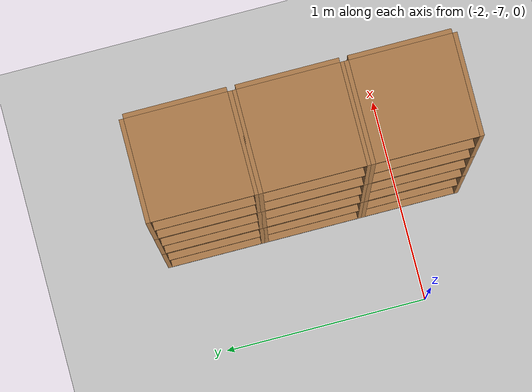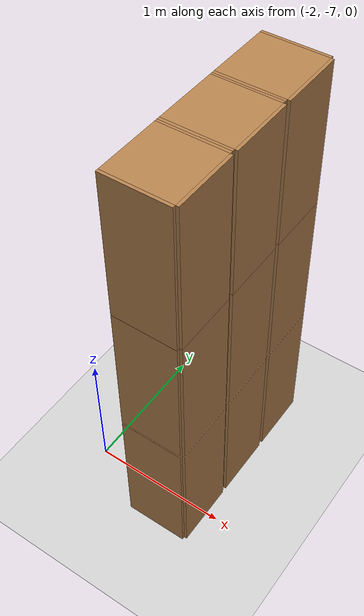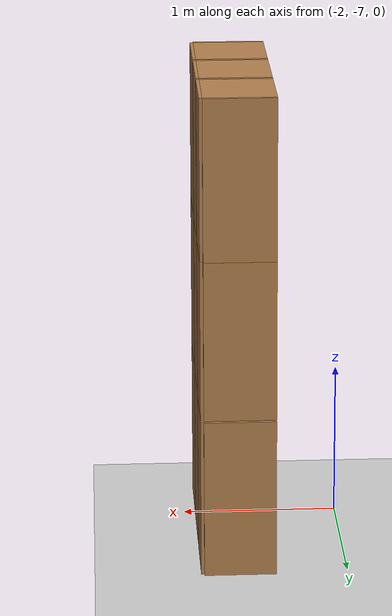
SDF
<sdf version="1.6">
 <world name="default">
  <model name="ground_plane">
   <static>1</static>
   <link name="link">
    <collision name="collision">
     <geometry><plane><normal>0 0 1</normal><size>100 100</size></plane></geometry>
     <surface>
      <contact><collide_bitmask>65535</collide_bitmask></contact>
      <friction><ode><mu>100</mu><mu2>50</mu2></ode></friction>
     </surface>
    </collision>
    <visual name="visual">
     <cast_shadows>0</cast_shadows>
     <geometry><plane><normal>0 0 1</normal><size>100 100</size></plane></geometry>
     <material>
      <script><uri>file://media/materials/scripts/gazebo.material</uri><name>Gazebo/Grey</name></script>
     </material>
    </visual>
   </link>
  </model>
  <model name="Locker18_clone_4_clone_2_clone_2_clone_2_clone_clone_1">
   <model name="Locker18">
    <model name="Locker3">
     <model name="cabinet">
      <static>1</static>
      <link name="cabinet_bottom_plate">
       <inertial>
        <pose>0 0 -1 0 -0 0</pose>
        <inertia><ixx>2.05</ixx><ixy>0</ixy><ixz>0</ixz><iyy>2.05</iyy><iyz>0</iyz><izz>2.05</izz></inertia>
        <mass>25</mass>
       </inertial>
       <collision name="cabinet_bottom_plate_geom">
        <pose>0 0 0.01 0 -0 0</pose>
        <geometry><box><size>0.45 0.45 0.02</size></box></geometry>
       </collision>
       <visual name="cabinet_bottom_plate_geom_visual">
        <pose>0 0 0.01 0 -0 0</pose>
        <geometry><box><size>0.45 0.45 0.02</size></box></geometry>
        <material>
         <script><uri>file://media/materials/scripts/gazebo.material</uri><name>Gazebo/Wood</name></script>
        </material>
       </visual>
       <collision name="cabinet_bottom_plate_geom_cabinet_back_plate">
        <pose>0.235 0 0.51 0 -0 0</pose>
        <geometry><box><size>0.02 0.45 1.02</size></box></geometry>
       </collision>
       <visual name="cabinet_bottom_plate_geom_cabinet_back_plate_visual">
        <pose>0.235 0 0.51 0 -0 0</pose>
        <geometry><box><size>0.02 0.45 1.02</size></box></geometry>
        <material>
         <script><uri>file://media/materials/scripts/gazebo.material</uri><name>Gazebo/Wood</name></script>
        </material>
       </visual>
       <collision name="cabinet_bottom_plate_geom_cabinet_left_plate">
        <pose>0 0.235 0.51 0 -0 0</pose>
        <geometry><box><size>0.45 0.02 1.02</size></box></geometry>
       </collision>
       <visual name="cabinet_bottom_plate_geom_cabinet_left_plate_visual">
        <pose>0 0.235 0.51 0 -0 0</pose>
        <geometry><box><size>0.45 0.02 1.02</size></box></geometry>
        <material>
         <script><uri>file://media/materials/scripts/gazebo.material</uri><name>Gazebo/Wood</name></script>
        </material>
       </visual>
       <collision name="cabinet_bottom_plate_geom_cabinet_middle_plate">
        <pose>0 0 0.51 0 -0 0</pose>
        <geometry><box><size>0.45 0.45 0.02</size></box></geometry>
       </collision>
       <visual name="cabinet_bottom_plate_geom_cabinet_middle_plate_visual">
        <pose>0 0 0.51 0 -0 0</pose>
        <geometry><box><size>0.45 0.45 0.02</size></box></geometry>
        <material>
         <script><uri>file://media/materials/scripts/gazebo.material</uri><name>Gazebo/Wood</name></script>
        </material>
       </visual>
       <collision name="cabinet_bottom_plate_geom_cabinet_right_plate">
        <pose>0 -0.235 0.51 0 -0 0</pose>
        <geometry><box><size>0.45 0.02 1.02</size></box></geometry>
       </collision>
       <visual name="cabinet_bottom_plate_geom_cabinet_right_plate_visual">
        <pose>0 -0.235 0.51 0 -0 0</pose>
        <geometry><box><size>0.45 0.02 1.02</size></box></geometry>
        <material>
         <script><uri>file://media/materials/scripts/gazebo.material</uri><name>Gazebo/Wood</name></script>
        </material>
       </visual>
       <collision name="cabinet_bottom_plate_geom_cabinet_top_plate">
        <pose>0 0 1.01 0 -0 0</pose>
        <geometry><box><size>0.45 0.45 0.02</size></box></geometry>
       </collision>
       <visual name="cabinet_bottom_plate_geom_cabinet_top_plate_visual">
        <pose>0 0 1.01 0 -0 0</pose>
        <geometry><box><size>0.45 0.45 0.02</size></box></geometry>
        <material>
         <script><uri>file://media/materials/scripts/gazebo.material</uri><name>Gazebo/Wood</name></script>
        </material>
       </visual>
      </link>
      <pose>-0.676968 1.45758 0 0 -0 0</pose>
     </model>
     <model name="cabinet_clone">
      <static>1</static>
      <link name="cabinet_bottom_plate">
       <inertial>
        <pose>0 0 -1 0 -0 0</pose>
        <inertia><ixx>2.05</ixx><ixy>0</ixy><ixz>0</ixz><iyy>2.05</iyy><iyz>0</iyz><izz>2.05</izz></inertia>
        <mass>25</mass>
       </inertial>
       <collision name="cabinet_bottom_plate_geom">
        <pose>0 0 0.01 0 -0 0</pose>
        <geometry><box><size>0.45 0.45 0.02</size></box></geometry>
       </collision>
       <visual name="cabinet_bottom_plate_geom_visual">
        <pose>0 0 0.01 0 -0 0</pose>
        <geometry><box><size>0.45 0.45 0.02</size></box></geometry>
        <material>
         <script><uri>file://media/materials/scripts/gazebo.material</uri><name>Gazebo/Wood</name></script>
        </material>
       </visual>
       <collision name="cabinet_bottom_plate_geom_cabinet_back_plate">
        <pose>0.235 0 0.51 0 -0 0</pose>
        <geometry><box><size>0.02 0.45 1.02</size></box></geometry>
       </collision>
       <visual name="cabinet_bottom_plate_geom_cabinet_back_plate_visual">
        <pose>0.235 0 0.51 0 -0 0</pose>
        <geometry><box><size>0.02 0.45 1.02</size></box></geometry>
        <material>
         <script><uri>file://media/materials/scripts/gazebo.material</uri><name>Gazebo/Wood</name></script>
        </material>
       </visual>
       <collision name="cabinet_bottom_plate_geom_cabinet_left_plate">
        <pose>0 0.235 0.51 0 -0 0</pose>
        <geometry><box><size>0.45 0.02 1.02</size></box></geometry>
       </collision>
       <visual name="cabinet_bottom_plate_geom_cabinet_left_plate_visual">
        <pose>0 0.235 0.51 0 -0 0</pose>
        <geometry><box><size>0.45 0.02 1.02</size></box></geometry>
        <material>
         <script><uri>file://media/materials/scripts/gazebo.material</uri><name>Gazebo/Wood</name></script>
        </material>
       </visual>
       <collision name="cabinet_bottom_plate_geom_cabinet_middle_plate">
        <pose>0 0 0.51 0 -0 0</pose>
        <geometry><box><size>0.45 0.45 0.02</size></box></geometry>
       </collision>
       <visual name="cabinet_bottom_plate_geom_cabinet_middle_plate_visual">
        <pose>0 0 0.51 0 -0 0</pose>
        <geometry><box><size>0.45 0.45 0.02</size></box></geometry>
        <material>
         <script><uri>file://media/materials/scripts/gazebo.material</uri><name>Gazebo/Wood</name></script>
        </material>
       </visual>
       <collision name="cabinet_bottom_plate_geom_cabinet_right_plate">
        <pose>0 -0.235 0.51 0 -0 0</pose>
        <geometry><box><size>0.45 0.02 1.02</size></box></geometry>
       </collision>
       <visual name="cabinet_bottom_plate_geom_cabinet_right_plate_visual">
        <pose>0 -0.235 0.51 0 -0 0</pose>
        <geometry><box><size>0.45 0.02 1.02</size></box></geometry>
        <material>
         <script><uri>file://media/materials/scripts/gazebo.material</uri><name>Gazebo/Wood</name></script>
        </material>
       </visual>
       <collision name="cabinet_bottom_plate_geom_cabinet_top_plate">
        <pose>0 0 1.01 0 -0 0</pose>
        <geometry><box><size>0.45 0.45 0.02</size></box></geometry>
       </collision>
       <visual name="cabinet_bottom_plate_geom_cabinet_top_plate_visual">
        <pose>0 0 1.01 0 -0 0</pose>
        <geometry><box><size>0.45 0.45 0.02</size></box></geometry>
        <material>
         <script><uri>file://media/materials/scripts/gazebo.material</uri><name>Gazebo/Wood</name></script>
        </material>
       </visual>
      </link>
      <pose>-0.676968 0.970971 0 0 -0 0</pose>
     </model>
     <model name="cabinet_clone_0">
      <static>1</static>
      <link name="cabinet_bottom_plate">
       <inertial>
        <pose>0 0 -1 0 -0 0</pose>
        <inertia><ixx>2.05</ixx><ixy>0</ixy><ixz>0</ixz><iyy>2.05</iyy><iyz>0</iyz><izz>2.05</izz></inertia>
        <mass>25</mass>
       </inertial>
       <collision name="cabinet_bottom_plate_geom">
        <pose>0 0 0.01 0 -0 0</pose>
        <geometry><box><size>0.45 0.45 0.02</size></box></geometry>
       </collision>
       <visual name="cabinet_bottom_plate_geom_visual">
        <pose>0 0 0.01 0 -0 0</pose>
        <geometry><box><size>0.45 0.45 0.02</size></box></geometry>
        <material>
         <script><uri>file://media/materials/scripts/gazebo.material</uri><name>Gazebo/Wood</name></script>
        </material>
       </visual>
       <collision name="cabinet_bottom_plate_geom_cabinet_back_plate">
        <pose>0.235 0 0.51 0 -0 0</pose>
        <geometry><box><size>0.02 0.45 1.02</size></box></geometry>
       </collision>
       <visual name="cabinet_bottom_plate_geom_cabinet_back_plate_visual">
        <pose>0.235 0 0.51 0 -0 0</pose>
        <geometry><box><size>0.02 0.45 1.02</size></box></geometry>
        <material>
         <script><uri>file://media/materials/scripts/gazebo.material</uri><name>Gazebo/Wood</name></script>
        </material>
       </visual>
       <collision name="cabinet_bottom_plate_geom_cabinet_left_plate">
        <pose>0 0.235 0.51 0 -0 0</pose>
        <geometry><box><size>0.45 0.02 1.02</size></box></geometry>
       </collision>
       <visual name="cabinet_bottom_plate_geom_cabinet_left_plate_visual">
        <pose>0 0.235 0.51 0 -0 0</pose>
        <geometry><box><size>0.45 0.02 1.02</size></box></geometry>
        <material>
         <script><uri>file://media/materials/scripts/gazebo.material</uri><name>Gazebo/Wood</name></script>
        </material>
       </visual>
       <collision name="cabinet_bottom_plate_geom_cabinet_middle_plate">
        <pose>0 0 0.51 0 -0 0</pose>
        <geometry><box><size>0.45 0.45 0.02</size></box></geometry>
       </collision>
       <visual name="cabinet_bottom_plate_geom_cabinet_middle_plate_visual">
        <pose>0 0 0.51 0 -0 0</pose>
        <geometry><box><size>0.45 0.45 0.02</size></box></geometry>
        <material>
         <script><uri>file://media/materials/scripts/gazebo.material</uri><name>Gazebo/Wood</name></script>
        </material>
       </visual>
       <collision name="cabinet_bottom_plate_geom_cabinet_right_plate">
        <pose>0 -0.235 0.51 0 -0 0</pose>
        <geometry><box><size>0.45 0.02 1.02</size></box></geometry>
       </collision>
       <visual name="cabinet_bottom_plate_geom_cabinet_right_plate_visual">
        <pose>0 -0.235 0.51 0 -0 0</pose>
        <geometry><box><size>0.45 0.02 1.02</size></box></geometry>
        <material>
         <script><uri>file://media/materials/scripts/gazebo.material</uri><name>Gazebo/Wood</name></script>
        </material>
       </visual>
       <collision name="cabinet_bottom_plate_geom_cabinet_top_plate">
        <pose>0 0 1.01 0 -0 0</pose>
        <geometry><box><size>0.45 0.45 0.02</size></box></geometry>
       </collision>
       <visual name="cabinet_bottom_plate_geom_cabinet_top_plate_visual">
        <pose>0 0 1.01 0 -0 0</pose>
        <geometry><box><size>0.45 0.45 0.02</size></box></geometry>
        <material>
         <script><uri>file://media/materials/scripts/gazebo.material</uri><name>Gazebo/Wood</name></script>
        </material>
       </visual>
      </link>
      <pose>-0.676968 0.48391 0 0 -0 0</pose>
     </model>
     <static>0</static>
     <pose>0 3e-06 -1.02763 0 -0 0</pose>
    </model>
    <model name="Locker3_clone">
     <model name="cabinet">
      <static>1</static>
      <link name="cabinet_bottom_plate">
       <inertial>
        <pose>0 0 -1 0 -0 0</pose>
        <inertia><ixx>2.05</ixx><ixy>0</ixy><ixz>0</ixz><iyy>2.05</iyy><iyz>0</iyz><izz>2.05</izz></inertia>
        <mass>25</mass>
       </inertial>
       <collision name="cabinet_bottom_plate_geom">
        <pose>0 0 0.01 0 -0 0</pose>
        <geometry><box><size>0.45 0.45 0.02</size></box></geometry>
       </collision>
       <visual name="cabinet_bottom_plate_geom_visual">
        <pose>0 0 0.01 0 -0 0</pose>
        <geometry><box><size>0.45 0.45 0.02</size></box></geometry>
        <material>
         <script><uri>file://media/materials/scripts/gazebo.material</uri><name>Gazebo/Wood</name></script>
        </material>
       </visual>
       <collision name="cabinet_bottom_plate_geom_cabinet_back_plate">
        <pose>0.235 0 0.51 0 -0 0</pose>
        <geometry><box><size>0.02 0.45 1.02</size></box></geometry>
       </collision>
       <visual name="cabinet_bottom_plate_geom_cabinet_back_plate_visual">
        <pose>0.235 0 0.51 0 -0 0</pose>
        <geometry><box><size>0.02 0.45 1.02</size></box></geometry>
        <material>
         <script><uri>file://media/materials/scripts/gazebo.material</uri><name>Gazebo/Wood</name></script>
        </material>
       </visual>
       <collision name="cabinet_bottom_plate_geom_cabinet_left_plate">
        <pose>0 0.235 0.51 0 -0 0</pose>
        <geometry><box><size>0.45 0.02 1.02</size></box></geometry>
       </collision>
       <visual name="cabinet_bottom_plate_geom_cabinet_left_plate_visual">
        <pose>0 0.235 0.51 0 -0 0</pose>
        <geometry><box><size>0.45 0.02 1.02</size></box></geometry>
        <material>
         <script><uri>file://media/materials/scripts/gazebo.material</uri><name>Gazebo/Wood</name></script>
        </material>
       </visual>
       <collision name="cabinet_bottom_plate_geom_cabinet_middle_plate">
        <pose>0 0 0.51 0 -0 0</pose>
        <geometry><box><size>0.45 0.45 0.02</size></box></geometry>
       </collision>
       <visual name="cabinet_bottom_plate_geom_cabinet_middle_plate_visual">
        <pose>0 0 0.51 0 -0 0</pose>
        <geometry><box><size>0.45 0.45 0.02</size></box></geometry>
        <material>
         <script><uri>file://media/materials/scripts/gazebo.material</uri><name>Gazebo/Wood</name></script>
        </material>
       </visual>
       <collision name="cabinet_bottom_plate_geom_cabinet_right_plate">
        <pose>0 -0.235 0.51 0 -0 0</pose>
        <geometry><box><size>0.45 0.02 1.02</size></box></geometry>
       </collision>
       <visual name="cabinet_bottom_plate_geom_cabinet_right_plate_visual">
        <pose>0 -0.235 0.51 0 -0 0</pose>
        <geometry><box><size>0.45 0.02 1.02</size></box></geometry>
        <material>
         <script><uri>file://media/materials/scripts/gazebo.material</uri><name>Gazebo/Wood</name></script>
        </material>
       </visual>
       <collision name="cabinet_bottom_plate_geom_cabinet_top_plate">
        <pose>0 0 1.01 0 -0 0</pose>
        <geometry><box><size>0.45 0.45 0.02</size></box></geometry>
       </collision>
       <visual name="cabinet_bottom_plate_geom_cabinet_top_plate_visual">
        <pose>0 0 1.01 0 -0 0</pose>
        <geometry><box><size>0.45 0.45 0.02</size></box></geometry>
        <material>
         <script><uri>file://media/materials/scripts/gazebo.material</uri><name>Gazebo/Wood</name></script>
        </material>
       </visual>
      </link>
      <pose>-0.676968 1.45758 0 0 -0 0</pose>
     </model>
     <model name="cabinet_clone">
      <static>1</static>
      <link name="cabinet_bottom_plate">
       <inertial>
        <pose>0 0 -1 0 -0 0</pose>
        <inertia><ixx>2.05</ixx><ixy>0</ixy><ixz>0</ixz><iyy>2.05</iyy><iyz>0</iyz><izz>2.05</izz></inertia>
        <mass>25</mass>
       </inertial>
       <collision name="cabinet_bottom_plate_geom">
        <pose>0 0 0.01 0 -0 0</pose>
        <geometry><box><size>0.45 0.45 0.02</size></box></geometry>
       </collision>
       <visual name="cabinet_bottom_plate_geom_visual">
        <pose>0 0 0.01 0 -0 0</pose>
        <geometry><box><size>0.45 0.45 0.02</size></box></geometry>
        <material>
         <script><uri>file://media/materials/scripts/gazebo.material</uri><name>Gazebo/Wood</name></script>
        </material>
       </visual>
       <collision name="cabinet_bottom_plate_geom_cabinet_back_plate">
        <pose>0.235 0 0.51 0 -0 0</pose>
        <geometry><box><size>0.02 0.45 1.02</size></box></geometry>
       </collision>
       <visual name="cabinet_bottom_plate_geom_cabinet_back_plate_visual">
        <pose>0.235 0 0.51 0 -0 0</pose>
        <geometry><box><size>0.02 0.45 1.02</size></box></geometry>
        <material>
         <script><uri>file://media/materials/scripts/gazebo.material</uri><name>Gazebo/Wood</name></script>
        </material>
       </visual>
       <collision name="cabinet_bottom_plate_geom_cabinet_left_plate">
        <pose>0 0.235 0.51 0 -0 0</pose>
        <geometry><box><size>0.45 0.02 1.02</size></box></geometry>
       </collision>
       <visual name="cabinet_bottom_plate_geom_cabinet_left_plate_visual">
        <pose>0 0.235 0.51 0 -0 0</pose>
        <geometry><box><size>0.45 0.02 1.02</size></box></geometry>
        <material>
         <script><uri>file://media/materials/scripts/gazebo.material</uri><name>Gazebo/Wood</name></script>
        </material>
       </visual>
       <collision name="cabinet_bottom_plate_geom_cabinet_middle_plate">
        <pose>0 0 0.51 0 -0 0</pose>
        <geometry><box><size>0.45 0.45 0.02</size></box></geometry>
       </collision>
       <visual name="cabinet_bottom_plate_geom_cabinet_middle_plate_visual">
        <pose>0 0 0.51 0 -0 0</pose>
        <geometry><box><size>0.45 0.45 0.02</size></box></geometry>
        <material>
         <script><uri>file://media/materials/scripts/gazebo.material</uri><name>Gazebo/Wood</name></script>
        </material>
       </visual>
       <collision name="cabinet_bottom_plate_geom_cabinet_right_plate">
        <pose>0 -0.235 0.51 0 -0 0</pose>
        <geometry><box><size>0.45 0.02 1.02</size></box></geometry>
       </collision>
       <visual name="cabinet_bottom_plate_geom_cabinet_right_plate_visual">
        <pose>0 -0.235 0.51 0 -0 0</pose>
        <geometry><box><size>0.45 0.02 1.02</size></box></geometry>
        <material>
         <script><uri>file://media/materials/scripts/gazebo.material</uri><name>Gazebo/Wood</name></script>
        </material>
       </visual>
       <collision name="cabinet_bottom_plate_geom_cabinet_top_plate">
        <pose>0 0 1.01 0 -0 0</pose>
        <geometry><box><size>0.45 0.45 0.02</size></box></geometry>
       </collision>
       <visual name="cabinet_bottom_plate_geom_cabinet_top_plate_visual">
        <pose>0 0 1.01 0 -0 0</pose>
        <geometry><box><size>0.45 0.45 0.02</size></box></geometry>
        <material>
         <script><uri>file://media/materials/scripts/gazebo.material</uri><name>Gazebo/Wood</name></script>
        </material>
       </visual>
      </link>
      <pose>-0.676968 0.970971 0 0 -0 0</pose>
     </model>
     <model name="cabinet_clone_0">
      <static>1</static>
      <link name="cabinet_bottom_plate">
       <inertial>
        <pose>0 0 -1 0 -0 0</pose>
        <inertia><ixx>2.05</ixx><ixy>0</ixy><ixz>0</ixz><iyy>2.05</iyy><iyz>0</iyz><izz>2.05</izz></inertia>
        <mass>25</mass>
       </inertial>
       <collision name="cabinet_bottom_plate_geom">
        <pose>0 0 0.01 0 -0 0</pose>
        <geometry><box><size>0.45 0.45 0.02</size></box></geometry>
       </collision>
       <visual name="cabinet_bottom_plate_geom_visual">
        <pose>0 0 0.01 0 -0 0</pose>
        <geometry><box><size>0.45 0.45 0.02</size></box></geometry>
        <material>
         <script><uri>file://media/materials/scripts/gazebo.material</uri><name>Gazebo/Wood</name></script>
        </material>
       </visual>
       <collision name="cabinet_bottom_plate_geom_cabinet_back_plate">
        <pose>0.235 0 0.51 0 -0 0</pose>
        <geometry><box><size>0.02 0.45 1.02</size></box></geometry>
       </collision>
       <visual name="cabinet_bottom_plate_geom_cabinet_back_plate_visual">
        <pose>0.235 0 0.51 0 -0 0</pose>
        <geometry><box><size>0.02 0.45 1.02</size></box></geometry>
        <material>
         <script><uri>file://media/materials/scripts/gazebo.material</uri><name>Gazebo/Wood</name></script>
        </material>
       </visual>
       <collision name="cabinet_bottom_plate_geom_cabinet_left_plate">
        <pose>0 0.235 0.51 0 -0 0</pose>
        <geometry><box><size>0.45 0.02 1.02</size></box></geometry>
       </collision>
       <visual name="cabinet_bottom_plate_geom_cabinet_left_plate_visual">
        <pose>0 0.235 0.51 0 -0 0</pose>
        <geometry><box><size>0.45 0.02 1.02</size></box></geometry>
        <material>
         <script><uri>file://media/materials/scripts/gazebo.material</uri><name>Gazebo/Wood</name></script>
        </material>
       </visual>
       <collision name="cabinet_bottom_plate_geom_cabinet_middle_plate">
        <pose>0 0 0.51 0 -0 0</pose>
        <geometry><box><size>0.45 0.45 0.02</size></box></geometry>
       </collision>
       <visual name="cabinet_bottom_plate_geom_cabinet_middle_plate_visual">
        <pose>0 0 0.51 0 -0 0</pose>
        <geometry><box><size>0.45 0.45 0.02</size></box></geometry>
        <material>
         <script><uri>file://media/materials/scripts/gazebo.material</uri><name>Gazebo/Wood</name></script>
        </material>
       </visual>
       <collision name="cabinet_bottom_plate_geom_cabinet_right_plate">
        <pose>0 -0.235 0.51 0 -0 0</pose>
        <geometry><box><size>0.45 0.02 1.02</size></box></geometry>
       </collision>
       <visual name="cabinet_bottom_plate_geom_cabinet_right_plate_visual">
        <pose>0 -0.235 0.51 0 -0 0</pose>
        <geometry><box><size>0.45 0.02 1.02</size></box></geometry>
        <material>
         <script><uri>file://media/materials/scripts/gazebo.material</uri><name>Gazebo/Wood</name></script>
        </material>
       </visual>
       <collision name="cabinet_bottom_plate_geom_cabinet_top_plate">
        <pose>0 0 1.01 0 -0 0</pose>
        <geometry><box><size>0.45 0.45 0.02</size></box></geometry>
       </collision>
       <visual name="cabinet_bottom_plate_geom_cabinet_top_plate_visual">
        <pose>0 0 1.01 0 -0 0</pose>
        <geometry><box><size>0.45 0.45 0.02</size></box></geometry>
        <material>
         <script><uri>file://media/materials/scripts/gazebo.material</uri><name>Gazebo/Wood</name></script>
        </material>
       </visual>
      </link>
      <pose>-0.676968 0.48391 0 0 -0 0</pose>
     </model>
     <static>0</static>
     <pose>0 3e-06 0.003717 0 -0 0</pose>
    </model>
    <model name="Locker3_clone_clone">
     <model name="cabinet">
      <static>1</static>
      <link name="cabinet_bottom_plate">
       <inertial>
        <pose>0 0 -1 0 -0 0</pose>
        <inertia><ixx>2.05</ixx><ixy>0</ixy><ixz>0</ixz><iyy>2.05</iyy><iyz>0</iyz><izz>2.05</izz></inertia>
        <mass>25</mass>
       </inertial>
       <collision name="cabinet_bottom_plate_geom">
        <pose>0 0 0.01 0 -0 0</pose>
        <geometry><box><size>0.45 0.45 0.02</size></box></geometry>
       </collision>
       <visual name="cabinet_bottom_plate_geom_visual">
        <pose>0 0 0.01 0 -0 0</pose>
        <geometry><box><size>0.45 0.45 0.02</size></box></geometry>
        <material>
         <script><uri>file://media/materials/scripts/gazebo.material</uri><name>Gazebo/Wood</name></script>
        </material>
       </visual>
       <collision name="cabinet_bottom_plate_geom_cabinet_back_plate">
        <pose>0.235 0 0.51 0 -0 0</pose>
        <geometry><box><size>0.02 0.45 1.02</size></box></geometry>
       </collision>
       <visual name="cabinet_bottom_plate_geom_cabinet_back_plate_visual">
        <pose>0.235 0 0.51 0 -0 0</pose>
        <geometry><box><size>0.02 0.45 1.02</size></box></geometry>
        <material>
         <script><uri>file://media/materials/scripts/gazebo.material</uri><name>Gazebo/Wood</name></script>
        </material>
       </visual>
       <collision name="cabinet_bottom_plate_geom_cabinet_left_plate">
        <pose>0 0.235 0.51 0 -0 0</pose>
        <geometry><box><size>0.45 0.02 1.02</size></box></geometry>
       </collision>
       <visual name="cabinet_bottom_plate_geom_cabinet_left_plate_visual">
        <pose>0 0.235 0.51 0 -0 0</pose>
        <geometry><box><size>0.45 0.02 1.02</size></box></geometry>
        <material>
         <script><uri>file://media/materials/scripts/gazebo.material</uri><name>Gazebo/Wood</name></script>
        </material>
       </visual>
       <collision name="cabinet_bottom_plate_geom_cabinet_middle_plate">
        <pose>0 0 0.51 0 -0 0</pose>
        <geometry><box><size>0.45 0.45 0.02</size></box></geometry>
       </collision>
       <visual name="cabinet_bottom_plate_geom_cabinet_middle_plate_visual">
        <pose>0 0 0.51 0 -0 0</pose>
        <geometry><box><size>0.45 0.45 0.02</size></box></geometry>
        <material>
         <script><uri>file://media/materials/scripts/gazebo.material</uri><name>Gazebo/Wood</name></script>
        </material>
       </visual>
       <collision name="cabinet_bottom_plate_geom_cabinet_right_plate">
        <pose>0 -0.235 0.51 0 -0 0</pose>
        <geometry><box><size>0.45 0.02 1.02</size></box></geometry>
       </collision>
       <visual name="cabinet_bottom_plate_geom_cabinet_right_plate_visual">
        <pose>0 -0.235 0.51 0 -0 0</pose>
        <geometry><box><size>0.45 0.02 1.02</size></box></geometry>
        <material>
         <script><uri>file://media/materials/scripts/gazebo.material</uri><name>Gazebo/Wood</name></script>
        </material>
       </visual>
       <collision name="cabinet_bottom_plate_geom_cabinet_top_plate">
        <pose>0 0 1.01 0 -0 0</pose>
        <geometry><box><size>0.45 0.45 0.02</size></box></geometry>
       </collision>
       <visual name="cabinet_bottom_plate_geom_cabinet_top_plate_visual">
        <pose>0 0 1.01 0 -0 0</pose>
        <geometry><box><size>0.45 0.45 0.02</size></box></geometry>
        <material>
         <script><uri>file://media/materials/scripts/gazebo.material</uri><name>Gazebo/Wood</name></script>
        </material>
       </visual>
      </link>
      <pose>-0.676968 1.45758 0 0 -0 0</pose>
     </model>
     <model name="cabinet_clone">
      <static>1</static>
      <link name="cabinet_bottom_plate">
       <inertial>
        <pose>0 0 -1 0 -0 0</pose>
        <inertia><ixx>2.05</ixx><ixy>0</ixy><ixz>0</ixz><iyy>2.05</iyy><iyz>0</iyz><izz>2.05</izz></inertia>
        <mass>25</mass>
       </inertial>
       <collision name="cabinet_bottom_plate_geom">
        <pose>0 0 0.01 0 -0 0</pose>
        <geometry><box><size>0.45 0.45 0.02</size></box></geometry>
       </collision>
       <visual name="cabinet_bottom_plate_geom_visual">
        <pose>0 0 0.01 0 -0 0</pose>
        <geometry><box><size>0.45 0.45 0.02</size></box></geometry>
        <material>
         <script><uri>file://media/materials/scripts/gazebo.material</uri><name>Gazebo/Wood</name></script>
        </material>
       </visual>
       <collision name="cabinet_bottom_plate_geom_cabinet_back_plate">
        <pose>0.235 0 0.51 0 -0 0</pose>
        <geometry><box><size>0.02 0.45 1.02</size></box></geometry>
       </collision>
       <visual name="cabinet_bottom_plate_geom_cabinet_back_plate_visual">
        <pose>0.235 0 0.51 0 -0 0</pose>
        <geometry><box><size>0.02 0.45 1.02</size></box></geometry>
        <material>
         <script><uri>file://media/materials/scripts/gazebo.material</uri><name>Gazebo/Wood</name></script>
        </material>
       </visual>
       <collision name="cabinet_bottom_plate_geom_cabinet_left_plate">
        <pose>0 0.235 0.51 0 -0 0</pose>
        <geometry><box><size>0.45 0.02 1.02</size></box></geometry>
       </collision>
       <visual name="cabinet_bottom_plate_geom_cabinet_left_plate_visual">
        <pose>0 0.235 0.51 0 -0 0</pose>
        <geometry><box><size>0.45 0.02 1.02</size></box></geometry>
        <material>
         <script><uri>file://media/materials/scripts/gazebo.material</uri><name>Gazebo/Wood</name></script>
        </material>
       </visual>
       <collision name="cabinet_bottom_plate_geom_cabinet_middle_plate">
        <pose>0 0 0.51 0 -0 0</pose>
        <geometry><box><size>0.45 0.45 0.02</size></box></geometry>
       </collision>
       <visual name="cabinet_bottom_plate_geom_cabinet_middle_plate_visual">
        <pose>0 0 0.51 0 -0 0</pose>
        <geometry><box><size>0.45 0.45 0.02</size></box></geometry>
        <material>
         <script><uri>file://media/materials/scripts/gazebo.material</uri><name>Gazebo/Wood</name></script>
        </material>
       </visual>
       <collision name="cabinet_bottom_plate_geom_cabinet_right_plate">
        <pose>0 -0.235 0.51 0 -0 0</pose>
        <geometry><box><size>0.45 0.02 1.02</size></box></geometry>
       </collision>
       <visual name="cabinet_bottom_plate_geom_cabinet_right_plate_visual">
        <pose>0 -0.235 0.51 0 -0 0</pose>
        <geometry><box><size>0.45 0.02 1.02</size></box></geometry>
        <material>
         <script><uri>file://media/materials/scripts/gazebo.material</uri><name>Gazebo/Wood</name></script>
        </material>
       </visual>
       <collision name="cabinet_bottom_plate_geom_cabinet_top_plate">
        <pose>0 0 1.01 0 -0 0</pose>
        <geometry><box><size>0.45 0.45 0.02</size></box></geometry>
       </collision>
       <visual name="cabinet_bottom_plate_geom_cabinet_top_plate_visual">
        <pose>0 0 1.01 0 -0 0</pose>
        <geometry><box><size>0.45 0.45 0.02</size></box></geometry>
        <material>
         <script><uri>file://media/materials/scripts/gazebo.material</uri><name>Gazebo/Wood</name></script>
        </material>
       </visual>
      </link>
      <pose>-0.676968 0.970971 0 0 -0 0</pose>
     </model>
     <model name="cabinet_clone_0">
      <static>1</static>
      <link name="cabinet_bottom_plate">
       <inertial>
        <pose>0 0 -1 0 -0 0</pose>
        <inertia><ixx>2.05</ixx><ixy>0</ixy><ixz>0</ixz><iyy>2.05</iyy><iyz>0</iyz><izz>2.05</izz></inertia>
        <mass>25</mass>
       </inertial>
       <collision name="cabinet_bottom_plate_geom">
        <pose>0 0 0.01 0 -0 0</pose>
        <geometry><box><size>0.45 0.45 0.02</size></box></geometry>
       </collision>
       <visual name="cabinet_bottom_plate_geom_visual">
        <pose>0 0 0.01 0 -0 0</pose>
        <geometry><box><size>0.45 0.45 0.02</size></box></geometry>
        <material>
         <script><uri>file://media/materials/scripts/gazebo.material</uri><name>Gazebo/Wood</name></script>
        </material>
       </visual>
       <collision name="cabinet_bottom_plate_geom_cabinet_back_plate">
        <pose>0.235 0 0.51 0 -0 0</pose>
        <geometry><box><size>0.02 0.45 1.02</size></box></geometry>
       </collision>
       <visual name="cabinet_bottom_plate_geom_cabinet_back_plate_visual">
        <pose>0.235 0 0.51 0 -0 0</pose>
        <geometry><box><size>0.02 0.45 1.02</size></box></geometry>
        <material>
         <script><uri>file://media/materials/scripts/gazebo.material</uri><name>Gazebo/Wood</name></script>
        </material>
       </visual>
       <collision name="cabinet_bottom_plate_geom_cabinet_left_plate">
        <pose>0 0.235 0.51 0 -0 0</pose>
        <geometry><box><size>0.45 0.02 1.02</size></box></geometry>
       </collision>
       <visual name="cabinet_bottom_plate_geom_cabinet_left_plate_visual">
        <pose>0 0.235 0.51 0 -0 0</pose>
        <geometry><box><size>0.45 0.02 1.02</size></box></geometry>
        <material>
         <script><uri>file://media/materials/scripts/gazebo.material</uri><name>Gazebo/Wood</name></script>
        </material>
       </visual>
       <collision name="cabinet_bottom_plate_geom_cabinet_middle_plate">
        <pose>0 0 0.51 0 -0 0</pose>
        <geometry><box><size>0.45 0.45 0.02</size></box></geometry>
       </collision>
       <visual name="cabinet_bottom_plate_geom_cabinet_middle_plate_visual">
        <pose>0 0 0.51 0 -0 0</pose>
        <geometry><box><size>0.45 0.45 0.02</size></box></geometry>
        <material>
         <script><uri>file://media/materials/scripts/gazebo.material</uri><name>Gazebo/Wood</name></script>
        </material>
       </visual>
       <collision name="cabinet_bottom_plate_geom_cabinet_right_plate">
        <pose>0 -0.235 0.51 0 -0 0</pose>
        <geometry><box><size>0.45 0.02 1.02</size></box></geometry>
       </collision>
       <visual name="cabinet_bottom_plate_geom_cabinet_right_plate_visual">
        <pose>0 -0.235 0.51 0 -0 0</pose>
        <geometry><box><size>0.45 0.02 1.02</size></box></geometry>
        <material>
         <script><uri>file://media/materials/scripts/gazebo.material</uri><name>Gazebo/Wood</name></script>
        </material>
       </visual>
       <collision name="cabinet_bottom_plate_geom_cabinet_top_plate">
        <pose>0 0 1.01 0 -0 0</pose>
        <geometry><box><size>0.45 0.45 0.02</size></box></geometry>
       </collision>
       <visual name="cabinet_bottom_plate_geom_cabinet_top_plate_visual">
        <pose>0 0 1.01 0 -0 0</pose>
        <geometry><box><size>0.45 0.45 0.02</size></box></geometry>
        <material>
         <script><uri>file://media/materials/scripts/gazebo.material</uri><name>Gazebo/Wood</name></script>
        </material>
       </visual>
      </link>
      <pose>-0.676968 0.48391 0 0 -0 0</pose>
     </model>
     <static>0</static>
     <pose>0 3e-06 1.02391 0 -0 0</pose>
    </model>
    <static>0</static>
    <pose>-0 4e-06 4e-06 0 -0 0</pose>
   </model>
   <static>0</static>
   <pose>-0.634698 -7.52723 1.08672 0 -0 0</pose>
  </model>
 </world>
</sdf>
